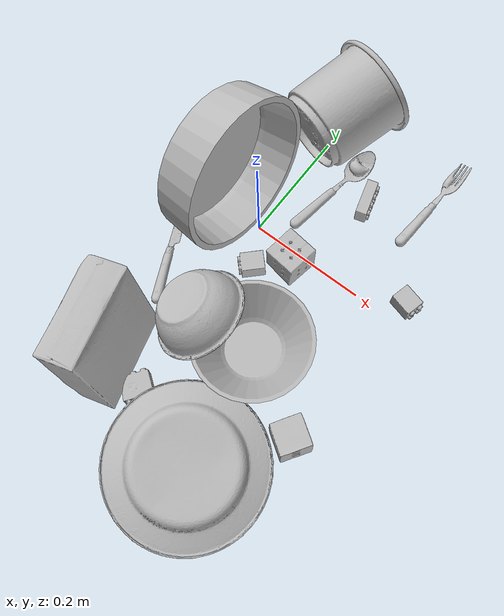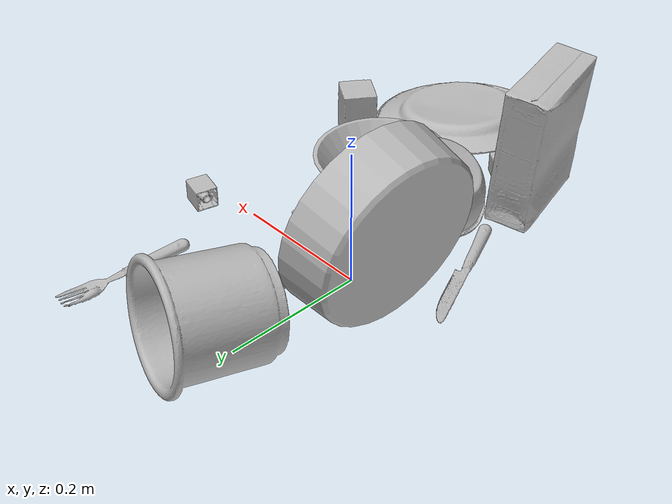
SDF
<sdf version="1.4">
  <world name="default">
    <light name="light1" type="point">
      <pose>0 0 1 0 0 0</pose>
      <diffuse>3 3 3 1</diffuse>
      <specular>3 3 3 1</specular>
    </light>
    <light name="light2" type="point">
      <pose>0 0.5 2 0 0 0</pose>
      <diffuse>1 1 1 1</diffuse>
      <specular>1 1 1 1</specular>
    </light>
    <light name="light3" type="point">
      <pose>0 0.5 2 0 0 0</pose>
      <diffuse>3 3 3 1</diffuse>
      <specular>3 3 3 1</specular>
    </light>
    <scene>
      <ambient>0.7 0.7 0.7</ambient>
    </scene>
    <model name="plate1">
      <link name="link_plate1">
        <collision name="default">
          <geometry>
            <mesh>
              <uri>model://plate/collision_meshes/collision.obj</uri>
              <scale>1.0 1.0 1.0</scale>
            </mesh>
          </geometry>
          <surface>
            <friction>
              <ode>
                <mu>0.5</mu>
                <mu2>0.5</mu2>
              </ode>
            </friction>
          <contact>
        <ode>
            <max_vel>0</max_vel>
            <min_depth>0.0001</min_depth>
            <kp>1e8</kp>
        </ode>
    </contact></surface>
        </collision>
        <visual name="default">
          <geometry>
            <mesh>
              <uri>model://plate/visual_meshes/visual.dae</uri>
              <scale>1.0 1.0 1.0</scale>
            </mesh>
          </geometry>
        </visual>
        <inertial>
          <mass>0.14927330613136292</mass>
          <pose>-0.0006044599576853216 0.00027825793949887156 -0.0010561984963715076 0.0022187657602494516 -0.0032254905015569333 0.45261542380491104</pose>
          <inertia>
            <ixx>0.0006983033</ixx>
            <iyy>0.0006916243</iyy>
            <izz>0.0013657772</izz>
            <ixy>0</ixy>
            <ixz>0</ixz>
            <iyz>0</iyz>
          </inertia>
        </inertial>
      </link>
      <pose>0.1581290066242218 -0.3825621008872986 0.02868214063346386 -3.0313683297237124 0.056745530621332266 0.622451476441722</pose>
    </model>
    <model name="plate2">
      <link name="link_plate2">
        <collision name="default">
          <geometry>
            <mesh>
              <uri>model://pan_tefal/collision_meshes/collision.obj</uri>
              <scale>1.0 1.0 1.0</scale>
            </mesh>
          </geometry>
          <surface>
            <friction>
              <ode>
                <mu>0.5</mu>
                <mu2>0.5</mu2>
              </ode>
            </friction>
          <contact>
        <ode>
            <max_vel>0</max_vel>
            <min_depth>0.0001</min_depth>
            <kp>1e8</kp>
        </ode>
    </contact></surface>
        </collision>
        <visual name="default">
          <geometry>
            <mesh>
              <uri>model://pan_tefal/visual_meshes/visual.dae</uri>
              <scale>1.0 1.0 1.0</scale>
            </mesh>
          </geometry>
        </visual>
        <inertial>
          <mass>1.1722657680511475</mass>
          <pose>-0.00018002268916461617 3.2786720112198964e-05 -0.008514933288097382 0.0008190189984333748 -0.0003301390782503885 -0.3318520141268409</pose>
          <inertia>
            <ixx>0.008092094</ixx>
            <iyy>0.008144264</iyy>
            <izz>0.014895983</izz>
            <ixy>0</ixy>
            <ixz>0</ixz>
            <iyz>0</iyz>
          </inertia>
        </inertial>
      </link>
      <pose>-0.06647835671901703 0.012292339466512203 0.12913988530635834 1.4087244465267261 0.20913800539115707 1.5150785288318116</pose>
    </model>
    <model name="bowl1">
      <link name="link_bowl1">
        <collision name="default">
          <geometry>
            <mesh>
              <uri>model://bowl_a/collision_meshes/collision.obj</uri>
              <scale>1.0 1.0 1.0</scale>
            </mesh>
          </geometry>
          <surface>
            <friction>
              <ode>
                <mu>0.5</mu>
                <mu2>0.5</mu2>
              </ode>
            </friction>
          <contact>
        <ode>
            <max_vel>0</max_vel>
            <min_depth>0.0001</min_depth>
            <kp>1e8</kp>
        </ode>
    </contact></surface>
        </collision>
        <visual name="default">
          <geometry>
            <mesh>
              <uri>model://bowl_a/visual_meshes/visual.dae</uri>
              <scale>1.0 1.0 1.0</scale>
            </mesh>
          </geometry>
        </visual>
        <inertial>
          <mass>0.2988097667694092</mass>
          <pose>0.0002786743571050465 4.731365334009752e-05 -0.0013765293406322598 -0.0009805349169279892 -0.001093820822183951 -0.19123530183129564</pose>
          <inertia>
            <ixx>0.00085072505</ixx>
            <iyy>0.00085594796</iyy>
            <izz>0.0015130473</izz>
            <ixy>0</ixy>
            <ixz>0</ixz>
            <iyz>0</iyz>
          </inertia>
        </inertial>
      </link>
      <pose>0.12268250435590744 -0.17544205486774445 0.030382957309484482 -1.0408488631860084e-06 5.787178692932337e-07 1.2772412760090706</pose>
    </model>
    <model name="bowl2">
      <link name="link_bowl2">
        <collision name="default">
          <geometry>
            <mesh>
              <uri>model://bowl/collision_meshes/collision.obj</uri>
              <scale>1.0 1.0 1.0</scale>
            </mesh>
          </geometry>
          <surface>
            <friction>
              <ode>
                <mu>0.5</mu>
                <mu2>0.5</mu2>
              </ode>
            </friction>
          <contact>
        <ode>
            <max_vel>0</max_vel>
            <min_depth>0.0001</min_depth>
            <kp>1e8</kp>
        </ode>
    </contact></surface>
        </collision>
        <visual name="default">
          <geometry>
            <mesh>
              <uri>model://bowl/visual_meshes/visual.dae</uri>
              <scale>1.0 1.0 1.0</scale>
            </mesh>
          </geometry>
        </visual>
        <inertial>
          <mass>0.05087859928607941</mass>
          <pose>0.00020445352129172534 -0.001030206447467208 -0.0008042655535973608 -0.015764084400621287 0.014546790156403148 0.7140405806030785</pose>
          <inertia>
            <ixx>0.0001168722</ixx>
            <iyy>0.00011426082</iyy>
            <izz>0.0001966192</izz>
            <ixy>0</ixy>
            <ixz>0</ixz>
            <iyz>0</iyz>
          </inertia>
        </inertial>
      </link>
      <pose>0.015727050602436066 -0.19085218012332916 0.0656542107462883 -2.919205450245173 0.5323142593377211 -2.5486866231141416</pose>
    </model>
    <model name="silverware1">
      <link name="link_silverware1">
        <collision name="default">
          <geometry>
            <mesh>
              <uri>model://spoon/collision_meshes/collision.obj</uri>
              <scale>1.0 1.0 1.0</scale>
            </mesh>
          </geometry>
          <surface>
            <friction>
              <ode>
                <mu>0.5</mu>
                <mu2>0.5</mu2>
              </ode>
            </friction>
          <contact>
        <ode>
            <max_vel>0</max_vel>
            <min_depth>0.0001</min_depth>
            <kp>1e8</kp>
        </ode>
    </contact></surface>
        </collision>
        <visual name="default">
          <geometry>
            <mesh>
              <uri>model://spoon/visual_meshes/visual.dae</uri>
              <scale>1.0 1.0 1.0</scale>
            </mesh>
          </geometry>
        </visual>
        <inertial>
          <mass>0.031133336946368217</mass>
          <pose>-0.005526311229914427 -0.001603417214937508 -0.000727165665011853 0.03521724372111935 -0.03906583963771688 0.006150613707428126</pose>
          <inertia>
            <ixx>1.7316867e-06</ixx>
            <iyy>0.00011846133</iyy>
            <izz>0.00011931534</izz>
            <ixy>0</ixy>
            <ixz>0</ixz>
            <iyz>0</iyz>
          </inertia>
        </inertial>
      </link>
      <pose>0.057791855186223984 0.12984658777713776 0.00838526152074337 0.006728875004669544 0.02689298217441949 1.4060868781282678</pose>
    </model>
    <model name="box1">
      <link name="link_box1">
        <collision name="default">
          <geometry>
            <mesh>
              <uri>model://cracker_box/collision_meshes/collision.obj</uri>
              <scale>1.0 1.0 1.0</scale>
            </mesh>
          </geometry>
          <surface>
            <friction>
              <ode>
                <mu>0.5</mu>
                <mu2>0.5</mu2>
              </ode>
            </friction>
          <contact>
        <ode>
            <max_vel>0</max_vel>
            <min_depth>0.0001</min_depth>
            <kp>1e8</kp>
        </ode>
    </contact></surface>
        </collision>
        <visual name="default">
          <geometry>
            <mesh>
              <uri>model://cracker_box/visual_meshes/visual.dae</uri>
              <scale>1.0 1.0 1.0</scale>
            </mesh>
          </geometry>
        </visual>
        <inertial>
          <mass>2.900710344314575</mass>
          <pose>0.0009464158210903406 0.00025434247800149024 -0.0017029534792527556 -0.0003162075379034469 -0.011106488669169442 0.0025467947685016775</pose>
          <inertia>
            <ixx>0.007378111</ixx>
            <iyy>0.012182713</iyy>
            <izz>0.01738585</izz>
            <ixy>0</ixy>
            <ixz>0</ixz>
            <iyz>0</iyz>
          </inertia>
        </inertial>
      </link>
      <pose>-0.04997942969202995 -0.31410089135169983 0.10714130848646164 -3.0310269059100325 -1.5000584330173594 -2.9927448733481565</pose>
    </model>
    <model name="box2">
      <link name="link_box2">
        <collision name="default">
          <geometry>
            <mesh>
              <uri>model://rubiks_cube/collision_meshes/collision.obj</uri>
              <scale>1.0 1.0 1.0</scale>
            </mesh>
          </geometry>
          <surface>
            <friction>
              <ode>
                <mu>0.5</mu>
                <mu2>0.5</mu2>
              </ode>
            </friction>
          <contact>
        <ode>
            <max_vel>0</max_vel>
            <min_depth>0.0001</min_depth>
            <kp>1e8</kp>
        </ode>
    </contact></surface>
        </collision>
        <visual name="default">
          <geometry>
            <mesh>
              <uri>model://rubiks_cube/visual_meshes/visual.dae</uri>
              <scale>1.0 1.0 1.0</scale>
            </mesh>
          </geometry>
        </visual>
        <inertial>
          <mass>0.28670012950897217</mass>
          <pose>2.6721039830590598e-05 5.2569666877388954e-05 -7.264316082000732e-06 -0.05467310906580907 -0.09814045067101686 -0.03445712671449578</pose>
          <inertia>
            <ixx>0.00015842107</ixx>
            <iyy>0.0001576823</iyy>
            <izz>0.00015973386</izz>
            <ixy>0</ixy>
            <ixz>0</ixz>
            <iyz>0</iyz>
          </inertia>
        </inertial>
      </link>
      <pose>0.08020244538784027 -0.019850388169288635 0.028678972274065018 -2.8713075315756663e-06 -8.324597430584699e-07 2.999030193006871</pose>
    </model>
    <model name="cup1">
      <link name="link_cup1">
        <collision name="default">
          <geometry>
            <mesh>
              <uri>model://g_cups/collision_meshes/collision.obj</uri>
              <scale>2.0 2.0 2.0</scale>
            </mesh>
          </geometry>
          <surface>
            <friction>
              <ode>
                <mu>0.5</mu>
                <mu2>0.5</mu2>
              </ode>
            </friction>
          <contact>
        <ode>
            <max_vel>0</max_vel>
            <min_depth>0.0001</min_depth>
            <kp>1e8</kp>
        </ode>
    </contact></surface>
        </collision>
        <visual name="default">
          <geometry>
            <mesh>
              <uri>model://g_cups/visual_meshes/visual.dae</uri>
              <scale>2.0 2.0 2.0</scale>
            </mesh>
          </geometry>
        </visual>
        <inertial>
          <mass>0.7979594469070435</mass>
          <pose>-0.001589252962730825 -8.413367322646081e-05 -0.004265873227268457 -0.2138242542550812 -0.3141046905663657 0.3112069095441374</pose>
          <inertia>
            <ixx>0.0037255902</ixx>
            <iyy>0.003712916</iyy>
            <izz>0.0038590694</izz>
            <ixy>0</ixy>
            <ixz>0</ixz>
            <iyz>0</iyz>
          </inertia>
        </inertial>
      </link>
      <pose>0.0004250571073498577 0.2296263426542282 0.07991558313369751 1.4102566963611831 0.8551410597513027 2.739043320228238</pose>
    </model>
    <model name="silverware2">
      <link name="link_silverware2">
        <collision name="default">
          <geometry>
            <mesh>
              <uri>model://fork/collision_meshes/collision.obj</uri>
              <scale>1.0 1.0 1.0</scale>
            </mesh>
          </geometry>
          <surface>
            <friction>
              <ode>
                <mu>0.5</mu>
                <mu2>0.5</mu2>
              </ode>
            </friction>
          <contact>
        <ode>
            <max_vel>0</max_vel>
            <min_depth>0.0001</min_depth>
            <kp>1e8</kp>
        </ode>
    </contact></surface>
        </collision>
        <visual name="default">
          <geometry>
            <mesh>
              <uri>model://fork/visual_meshes/visual.dae</uri>
              <scale>1.0 1.0 1.0</scale>
            </mesh>
          </geometry>
        </visual>
        <inertial>
          <mass>0.026295984163880348</mass>
          <pose>-0.02957003563642502 0.0004658822435885668 0.0003218861238565296 -0.013551585765180826 -0.010977835012843383 0.014453895551669751</pose>
          <inertia>
            <ixx>9.2182285e-07</ixx>
            <iyy>6.865125e-05</iyy>
            <izz>6.9063564e-05</izz>
            <ixy>0</ixy>
            <ixz>0</ixz>
            <iyz>0</iyz>
          </inertia>
        </inertial>
      </link>
      <pose>0.21163612604141235 0.21049010753631592 0.005690477322787046 -0.18838406723803555 0.0248556536742829 1.4950170312670263</pose>
    </model>
    <model name="silverware3">
      <link name="link_silverware3">
        <collision name="default">
          <geometry>
            <mesh>
              <uri>model://knife/collision_meshes/collision.obj</uri>
              <scale>1.0 1.0 1.0</scale>
            </mesh>
          </geometry>
          <surface>
            <friction>
              <ode>
                <mu>0.5</mu>
                <mu2>0.5</mu2>
              </ode>
            </friction>
          <contact>
        <ode>
            <max_vel>0</max_vel>
            <min_depth>0.0001</min_depth>
            <kp>1e8</kp>
        </ode>
    </contact></surface>
        </collision>
        <visual name="default">
          <geometry>
            <mesh>
              <uri>model://knife/visual_meshes/visual.dae</uri>
              <scale>1.0 1.0 1.0</scale>
            </mesh>
          </geometry>
        </visual>
        <inertial>
          <mass>0.018686598166823387</mass>
          <pose>-0.023785265162587166 0.001527512213215232 5.06201722600963e-05 0.0730586728597059 0.01724841756758314 -0.007409823953988089</pose>
          <inertia>
            <ixx>5.3040145e-07</ixx>
            <iyy>7.1790884e-05</iyy>
            <izz>7.1961695e-05</izz>
            <ixy>0</ixy>
            <ixz>0</ixz>
            <iyz>0</iyz>
          </inertia>
        </inertial>
      </link>
      <pose>-0.09441196918487549 -0.11332888156175613 0.008136809803545475 -0.281748859096977 -0.008871649873900947 1.9998648411075912</pose>
    </model>
    <model name="toy1">
      <link name="link_toy1">
        <collision name="default">
          <geometry>
            <mesh>
              <uri>model://d_lego_duplo/collision_meshes/collision.obj</uri>
              <scale>1.0 1.0 1.0</scale>
            </mesh>
          </geometry>
          <surface>
            <friction>
              <ode>
                <mu>0.5</mu>
                <mu2>0.5</mu2>
              </ode>
            </friction>
          <contact>
        <ode>
            <max_vel>0</max_vel>
            <min_depth>0.0001</min_depth>
            <kp>1e8</kp>
        </ode>
    </contact></surface>
        </collision>
        <visual name="default">
          <geometry>
            <mesh>
              <uri>model://d_lego_duplo/visual_meshes/visual.dae</uri>
              <scale>1.0 1.0 1.0</scale>
            </mesh>
          </geometry>
        </visual>
        <inertial>
          <mass>0.057973701506853104</mass>
          <pose>0.002830564510077238 0.0001636612432776019 0.000858980929479003 0.08010949801199577 -0.38355255965562274 0.0010296774355632512</pose>
          <inertia>
            <ixx>1.1222855e-05</ixx>
            <iyy>1.5928275e-05</iyy>
            <izz>1.5360585e-05</izz>
            <ixy>0</ixy>
            <ixz>0</ixz>
            <iyz>0</iyz>
          </inertia>
        </inertial>
      </link>
      <pose>0.017056094482541084 -0.33360350131988525 0.016409780830144882 -1.5615042433952206 0.00012469712096915242 0.9452702569301038</pose>
    </model>
    <model name="toy2">
      <link name="link_toy2">
        <collision name="default">
          <geometry>
            <mesh>
              <uri>model://c_lego_duplo/collision_meshes/collision.obj</uri>
              <scale>1.0 1.0 1.0</scale>
            </mesh>
          </geometry>
          <surface>
            <friction>
              <ode>
                <mu>0.5</mu>
                <mu2>0.5</mu2>
              </ode>
            </friction>
          <contact>
        <ode>
            <max_vel>0</max_vel>
            <min_depth>0.0001</min_depth>
            <kp>1e8</kp>
        </ode>
    </contact></surface>
        </collision>
        <visual name="default">
          <geometry>
            <mesh>
              <uri>model://c_lego_duplo/visual_meshes/visual.dae</uri>
              <scale>1.0 1.0 1.0</scale>
            </mesh>
          </geometry>
        </visual>
        <inertial>
          <mass>0.03295557200908661</mass>
          <pose>0.00031645927811041474 0.0001946454867720604 0.0010453149443492293 -0.011520797378012098 0.005900082234647494 0.03110035414112205</pose>
          <inertia>
            <ixx>1.2681916e-05</ixx>
            <iyy>4.0510618e-06</iyy>
            <izz>1.4820123e-05</izz>
            <ixy>0</ixy>
            <ixz>0</ixz>
            <iyz>0</iyz>
          </inertia>
        </inertial>
      </link>
      <pose>0.11977268755435944 0.14455167949199677 0.016402913257479668 -1.4171301555136289 1.5444115192554853 -1.144787529550287</pose>
    </model>
    <model name="toy3">
      <link name="link_toy3">
        <collision name="default">
          <geometry>
            <mesh>
              <uri>model://foam_brick/collision_meshes/collision.obj</uri>
              <scale>1.0 1.0 1.0</scale>
            </mesh>
          </geometry>
          <surface>
            <friction>
              <ode>
                <mu>0.5</mu>
                <mu2>0.5</mu2>
              </ode>
            </friction>
          <contact>
        <ode>
            <max_vel>0</max_vel>
            <min_depth>0.0001</min_depth>
            <kp>1e8</kp>
        </ode>
    </contact></surface>
        </collision>
        <visual name="default">
          <geometry>
            <mesh>
              <uri>model://foam_brick/visual_meshes/visual.dae</uri>
              <scale>1.0 1.0 1.0</scale>
            </mesh>
          </geometry>
        </visual>
        <inertial>
          <mass>0.2026180773973465</mass>
          <pose>-0.00025224717683158815 0.0003458433202467859 -0.0002532101352699101 -0.2940154265809752 0.017274439844268085 -0.0007449877964386924</pose>
          <inertia>
            <ixx>8.850737e-05</ixx>
            <iyy>0.00014130655</iyy>
            <izz>0.00014310238</izz>
            <ixy>0</ixy>
            <ixz>0</ixz>
            <iyz>0</iyz>
          </inertia>
        </inertial>
      </link>
      <pose>0.25704634189605713 -0.2566406726837158 0.03830838203430176 2.010262979874767 1.552181801391903 1.4304692840355737</pose>
    </model>
    <model name="toy4">
      <link name="link_toy4">
        <collision name="default">
          <geometry>
            <mesh>
              <uri>model://f_lego_duplo/collision_meshes/collision.obj</uri>
              <scale>1.0 1.0 1.0</scale>
            </mesh>
          </geometry>
          <surface>
            <friction>
              <ode>
                <mu>0.5</mu>
                <mu2>0.5</mu2>
              </ode>
            </friction>
          <contact>
        <ode>
            <max_vel>0</max_vel>
            <min_depth>0.0001</min_depth>
            <kp>1e8</kp>
        </ode>
    </contact></surface>
        </collision>
        <visual name="default">
          <geometry>
            <mesh>
              <uri>model://f_lego_duplo/visual_meshes/visual.dae</uri>
              <scale>1.0 1.0 1.0</scale>
            </mesh>
          </geometry>
        </visual>
        <inertial>
          <mass>0.026114314794540405</mass>
          <pose>2.3694528863416053e-05 0.00013393153494689614 0.001883787801489234 0.02983849389432246 -0.014425286210530337 -0.675657453158783</pose>
          <inertia>
            <ixx>5.5180976e-06</ixx>
            <iyy>5.5672576e-06</iyy>
            <izz>4.7899434e-06</izz>
            <ixy>0</ixy>
            <ixz>0</ixz>
            <iyz>0</iyz>
          </inertia>
        </inertial>
      </link>
      <pose>0.2754415273666382 0.033800214529037476 0.0162072591483593 1.5790137316935238 0.00012194473946838734 1.323419921490737</pose>
    </model>
    <model name="toy5">
      <link name="link_toy5">
        <collision name="default">
          <geometry>
            <mesh>
              <uri>model://b_lego_duplo/collision_meshes/collision.obj</uri>
              <scale>1.0 1.0 1.0</scale>
            </mesh>
          </geometry>
          <surface>
            <friction>
              <ode>
                <mu>0.5</mu>
                <mu2>0.5</mu2>
              </ode>
            </friction>
          <contact>
        <ode>
            <max_vel>0</max_vel>
            <min_depth>0.0001</min_depth>
            <kp>1e8</kp>
        </ode>
    </contact></surface>
        </collision>
        <visual name="default">
          <geometry>
            <mesh>
              <uri>model://b_lego_duplo/visual_meshes/visual.dae</uri>
              <scale>1.0 1.0 1.0</scale>
            </mesh>
          </geometry>
        </visual>
        <inertial>
          <mass>0.0471348837018013</mass>
          <pose>-0.00011053068010369316 -9.152583515970036e-06 0.0019294292433187366 -0.037494549971735465 -0.026354388193955382 0.45188781154390406</pose>
          <inertia>
            <ixx>9.646508e-06</ixx>
            <iyy>9.711356e-06</iyy>
            <izz>8.594722e-06</izz>
            <ixy>0</ixy>
            <ixz>0</ixz>
            <iyz>0</iyz>
          </inertia>
        </inertial>
      </link>
      <pose>0.03337375819683075 -0.06502227485179901 0.01615234650671482 -3.1211473949812283 1.5624599104269525 0.8003102403807311</pose>
    </model>
  <physics type="ode">
      <max_contacts>50</max_contacts>
      <ode>
        <solver>
          <type>quick</type>
          <iters>75</iters>
        </solver>
        <constraints>
          <contact_max_correcting_vel>0</contact_max_correcting_vel>
          <contact_surface_layer>0</contact_surface_layer>
        </constraints>
      </ode>
    </physics></world>
</sdf>
